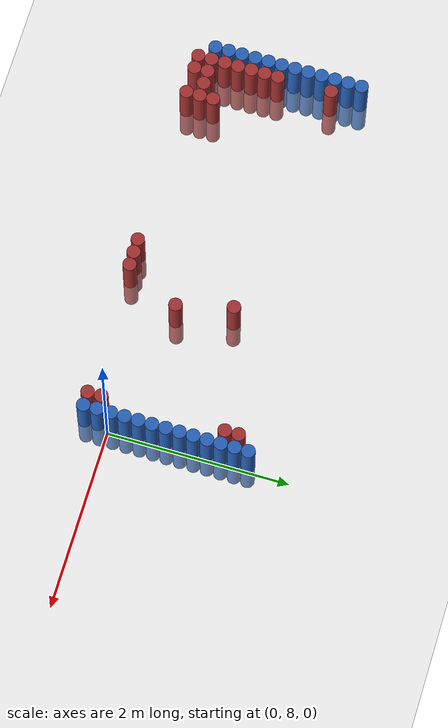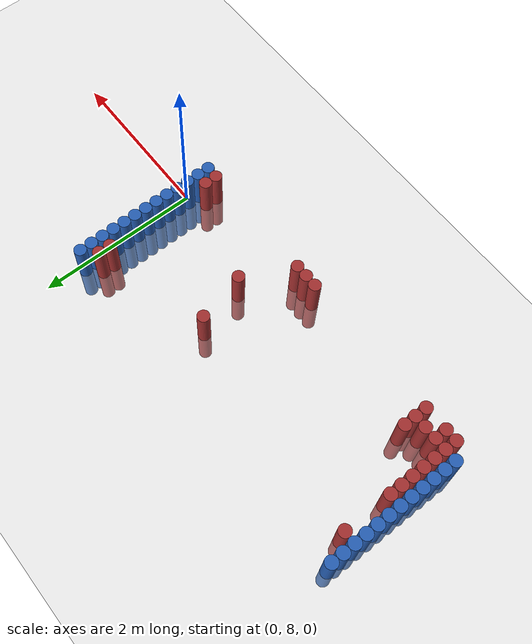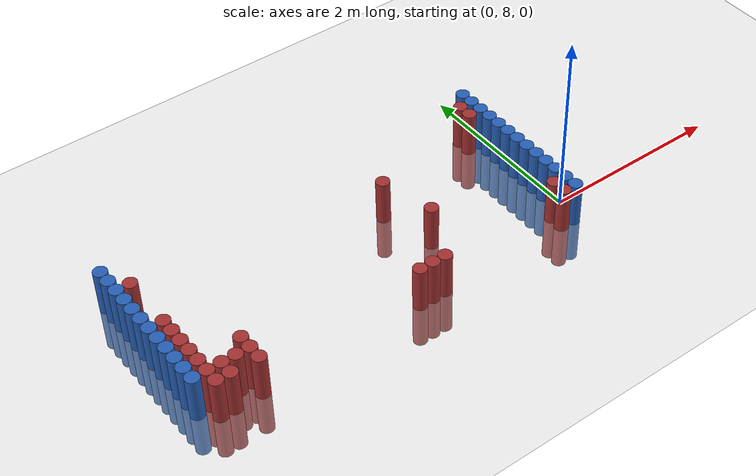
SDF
<sdf version="1.6">
 <world name="default">
  <model name="ground_plane">
   <static>1</static>
   <link name="link">
    <collision name="collision">
     <geometry><plane><normal>0 0 1</normal><size>100 100</size></plane></geometry>
     <surface><friction><ode><mu>100</mu><mu2>50</mu2></ode></friction></surface>
    </collision>
    <visual name="visual">
     <cast_shadows>0</cast_shadows>
     <geometry><plane><normal>0 0 1</normal><size>100 100</size></plane></geometry>
     <material>
      <script><uri>file://media/materials/scripts/gazebo.material</uri><name>Gazebo/Grey</name></script>
     </material>
    </visual>
   </link>
  </model>
  <model name="unit_cylinder_114">
   <static>1</static>
   <pose>-4.425000 7.875000 0.000000 0.000000 0.000000 0.000000</pose>
   <link name="link">
    <inertial>
     <mass>1</mass>
     <inertia><ixx>0.145833</ixx><ixy>0</ixy><ixz>0</ixz><iyy>0.145833</iyy><iyz>0</iyz><izz>0.125</izz></inertia>
    </inertial>
    <collision name="collision">
     <geometry><cylinder><radius>0.075000</radius><length>1</length></cylinder></geometry>
    </collision>
    <visual name="visual">
     <geometry><cylinder><radius>0.075000</radius><length>1</length></cylinder></geometry>
     <material>
      <ambient>0.152000 0.379000 0.720000 1</ambient>
      <diffuse>0.152000 0.379000 0.720000 1</diffuse>
     </material>
     <material>
      <script><name>Gazebo/Grey</name><uri>file://media/materials/scripts/gazebo.material</uri></script>
     </material>
    </visual>
   </link>
  </model>
  <model name="unit_cylinder_115">
   <static>1</static>
   <pose>-4.425000 8.025000 0.000000 0.000000 0.000000 0.000000</pose>
   <link name="link">
    <inertial>
     <mass>1</mass>
     <inertia><ixx>0.145833</ixx><ixy>0</ixy><ixz>0</ixz><iyy>0.145833</iyy><iyz>0</iyz><izz>0.125</izz></inertia>
    </inertial>
    <collision name="collision">
     <geometry><cylinder><radius>0.075000</radius><length>1</length></cylinder></geometry>
    </collision>
    <visual name="visual">
     <geometry><cylinder><radius>0.075000</radius><length>1</length></cylinder></geometry>
     <material>
      <ambient>0.152000 0.379000 0.720000 1</ambient>
      <diffuse>0.152000 0.379000 0.720000 1</diffuse>
     </material>
     <material>
      <script><name>Gazebo/Grey</name><uri>file://media/materials/scripts/gazebo.material</uri></script>
     </material>
    </visual>
   </link>
  </model>
  <model name="unit_cylinder_116">
   <static>1</static>
   <pose>-4.425000 8.175000 0.000000 0.000000 0.000000 0.000000</pose>
   <link name="link">
    <inertial>
     <mass>1</mass>
     <inertia><ixx>0.145833</ixx><ixy>0</ixy><ixz>0</ixz><iyy>0.145833</iyy><iyz>0</iyz><izz>0.125</izz></inertia>
    </inertial>
    <collision name="collision">
     <geometry><cylinder><radius>0.075000</radius><length>1</length></cylinder></geometry>
    </collision>
    <visual name="visual">
     <geometry><cylinder><radius>0.075000</radius><length>1</length></cylinder></geometry>
     <material>
      <ambient>0.152000 0.379000 0.720000 1</ambient>
      <diffuse>0.152000 0.379000 0.720000 1</diffuse>
     </material>
     <material>
      <script><name>Gazebo/Grey</name><uri>file://media/materials/scripts/gazebo.material</uri></script>
     </material>
    </visual>
   </link>
  </model>
  <model name="unit_cylinder_117">
   <static>1</static>
   <pose>-4.425000 8.325000 0.000000 0.000000 0.000000 0.000000</pose>
   <link name="link">
    <inertial>
     <mass>1</mass>
     <inertia><ixx>0.145833</ixx><ixy>0</ixy><ixz>0</ixz><iyy>0.145833</iyy><iyz>0</iyz><izz>0.125</izz></inertia>
    </inertial>
    <collision name="collision">
     <geometry><cylinder><radius>0.075000</radius><length>1</length></cylinder></geometry>
    </collision>
    <visual name="visual">
     <geometry><cylinder><radius>0.075000</radius><length>1</length></cylinder></geometry>
     <material>
      <ambient>0.152000 0.379000 0.720000 1</ambient>
      <diffuse>0.152000 0.379000 0.720000 1</diffuse>
     </material>
     <material>
      <script><name>Gazebo/Grey</name><uri>file://media/materials/scripts/gazebo.material</uri></script>
     </material>
    </visual>
   </link>
  </model>
  <model name="unit_cylinder_118">
   <static>1</static>
   <pose>-4.425000 8.475000 0.000000 0.000000 0.000000 0.000000</pose>
   <link name="link">
    <inertial>
     <mass>1</mass>
     <inertia><ixx>0.145833</ixx><ixy>0</ixy><ixz>0</ixz><iyy>0.145833</iyy><iyz>0</iyz><izz>0.125</izz></inertia>
    </inertial>
    <collision name="collision">
     <geometry><cylinder><radius>0.075000</radius><length>1</length></cylinder></geometry>
    </collision>
    <visual name="visual">
     <geometry><cylinder><radius>0.075000</radius><length>1</length></cylinder></geometry>
     <material>
      <ambient>0.152000 0.379000 0.720000 1</ambient>
      <diffuse>0.152000 0.379000 0.720000 1</diffuse>
     </material>
     <material>
      <script><name>Gazebo/Grey</name><uri>file://media/materials/scripts/gazebo.material</uri></script>
     </material>
    </visual>
   </link>
  </model>
  <model name="unit_cylinder_119">
   <static>1</static>
   <pose>-4.425000 8.625000 0.000000 0.000000 0.000000 0.000000</pose>
   <link name="link">
    <inertial>
     <mass>1</mass>
     <inertia><ixx>0.145833</ixx><ixy>0</ixy><ixz>0</ixz><iyy>0.145833</iyy><iyz>0</iyz><izz>0.125</izz></inertia>
    </inertial>
    <collision name="collision">
     <geometry><cylinder><radius>0.075000</radius><length>1</length></cylinder></geometry>
    </collision>
    <visual name="visual">
     <geometry><cylinder><radius>0.075000</radius><length>1</length></cylinder></geometry>
     <material>
      <ambient>0.152000 0.379000 0.720000 1</ambient>
      <diffuse>0.152000 0.379000 0.720000 1</diffuse>
     </material>
     <material>
      <script><name>Gazebo/Grey</name><uri>file://media/materials/scripts/gazebo.material</uri></script>
     </material>
    </visual>
   </link>
  </model>
  <model name="unit_cylinder_120">
   <static>1</static>
   <pose>-4.425000 8.775000 0.000000 0.000000 0.000000 0.000000</pose>
   <link name="link">
    <inertial>
     <mass>1</mass>
     <inertia><ixx>0.145833</ixx><ixy>0</ixy><ixz>0</ixz><iyy>0.145833</iyy><iyz>0</iyz><izz>0.125</izz></inertia>
    </inertial>
    <collision name="collision">
     <geometry><cylinder><radius>0.075000</radius><length>1</length></cylinder></geometry>
    </collision>
    <visual name="visual">
     <geometry><cylinder><radius>0.075000</radius><length>1</length></cylinder></geometry>
     <material>
      <ambient>0.152000 0.379000 0.720000 1</ambient>
      <diffuse>0.152000 0.379000 0.720000 1</diffuse>
     </material>
     <material>
      <script><name>Gazebo/Grey</name><uri>file://media/materials/scripts/gazebo.material</uri></script>
     </material>
    </visual>
   </link>
  </model>
  <model name="unit_cylinder_121">
   <static>1</static>
   <pose>-4.425000 8.925000 0.000000 0.000000 0.000000 0.000000</pose>
   <link name="link">
    <inertial>
     <mass>1</mass>
     <inertia><ixx>0.145833</ixx><ixy>0</ixy><ixz>0</ixz><iyy>0.145833</iyy><iyz>0</iyz><izz>0.125</izz></inertia>
    </inertial>
    <collision name="collision">
     <geometry><cylinder><radius>0.075000</radius><length>1</length></cylinder></geometry>
    </collision>
    <visual name="visual">
     <geometry><cylinder><radius>0.075000</radius><length>1</length></cylinder></geometry>
     <material>
      <ambient>0.152000 0.379000 0.720000 1</ambient>
      <diffuse>0.152000 0.379000 0.720000 1</diffuse>
     </material>
     <material>
      <script><name>Gazebo/Grey</name><uri>file://media/materials/scripts/gazebo.material</uri></script>
     </material>
    </visual>
   </link>
  </model>
  <model name="unit_cylinder_122">
   <static>1</static>
   <pose>-4.425000 9.075000 0.000000 0.000000 0.000000 0.000000</pose>
   <link name="link">
    <inertial>
     <mass>1</mass>
     <inertia><ixx>0.145833</ixx><ixy>0</ixy><ixz>0</ixz><iyy>0.145833</iyy><iyz>0</iyz><izz>0.125</izz></inertia>
    </inertial>
    <collision name="collision">
     <geometry><cylinder><radius>0.075000</radius><length>1</length></cylinder></geometry>
    </collision>
    <visual name="visual">
     <geometry><cylinder><radius>0.075000</radius><length>1</length></cylinder></geometry>
     <material>
      <ambient>0.152000 0.379000 0.720000 1</ambient>
      <diffuse>0.152000 0.379000 0.720000 1</diffuse>
     </material>
     <material>
      <script><name>Gazebo/Grey</name><uri>file://media/materials/scripts/gazebo.material</uri></script>
     </material>
    </visual>
   </link>
  </model>
  <model name="unit_cylinder_123">
   <static>1</static>
   <pose>-4.425000 9.225000 0.000000 0.000000 0.000000 0.000000</pose>
   <link name="link">
    <inertial>
     <mass>1</mass>
     <inertia><ixx>0.145833</ixx><ixy>0</ixy><ixz>0</ixz><iyy>0.145833</iyy><iyz>0</iyz><izz>0.125</izz></inertia>
    </inertial>
    <collision name="collision">
     <geometry><cylinder><radius>0.075000</radius><length>1</length></cylinder></geometry>
    </collision>
    <visual name="visual">
     <geometry><cylinder><radius>0.075000</radius><length>1</length></cylinder></geometry>
     <material>
      <ambient>0.152000 0.379000 0.720000 1</ambient>
      <diffuse>0.152000 0.379000 0.720000 1</diffuse>
     </material>
     <material>
      <script><name>Gazebo/Grey</name><uri>file://media/materials/scripts/gazebo.material</uri></script>
     </material>
    </visual>
   </link>
  </model>
  <model name="unit_cylinder_124">
   <static>1</static>
   <pose>-4.425000 9.375000 0.000000 0.000000 0.000000 0.000000</pose>
   <link name="link">
    <inertial>
     <mass>1</mass>
     <inertia><ixx>0.145833</ixx><ixy>0</ixy><ixz>0</ixz><iyy>0.145833</iyy><iyz>0</iyz><izz>0.125</izz></inertia>
    </inertial>
    <collision name="collision">
     <geometry><cylinder><radius>0.075000</radius><length>1</length></cylinder></geometry>
    </collision>
    <visual name="visual">
     <geometry><cylinder><radius>0.075000</radius><length>1</length></cylinder></geometry>
     <material>
      <ambient>0.152000 0.379000 0.720000 1</ambient>
      <diffuse>0.152000 0.379000 0.720000 1</diffuse>
     </material>
     <material>
      <script><name>Gazebo/Grey</name><uri>file://media/materials/scripts/gazebo.material</uri></script>
     </material>
    </visual>
   </link>
  </model>
  <model name="unit_cylinder_125">
   <static>1</static>
   <pose>-4.425000 9.525000 0.000000 0.000000 0.000000 0.000000</pose>
   <link name="link">
    <inertial>
     <mass>1</mass>
     <inertia><ixx>0.145833</ixx><ixy>0</ixy><ixz>0</ixz><iyy>0.145833</iyy><iyz>0</iyz><izz>0.125</izz></inertia>
    </inertial>
    <collision name="collision">
     <geometry><cylinder><radius>0.075000</radius><length>1</length></cylinder></geometry>
    </collision>
    <visual name="visual">
     <geometry><cylinder><radius>0.075000</radius><length>1</length></cylinder></geometry>
     <material>
      <ambient>0.152000 0.379000 0.720000 1</ambient>
      <diffuse>0.152000 0.379000 0.720000 1</diffuse>
     </material>
     <material>
      <script><name>Gazebo/Grey</name><uri>file://media/materials/scripts/gazebo.material</uri></script>
     </material>
    </visual>
   </link>
  </model>
  <model name="unit_cylinder_131">
   <static>1</static>
   <pose>-4.275000 7.725000 0.000000 0.000000 0.000000 0.000000</pose>
   <link name="link">
    <inertial>
     <mass>1</mass>
     <inertia><ixx>0.145833</ixx><ixy>0</ixy><ixz>0</ixz><iyy>0.145833</iyy><iyz>0</iyz><izz>0.125</izz></inertia>
    </inertial>
    <collision name="collision">
     <geometry><cylinder><radius>0.075000</radius><length>1</length></cylinder></geometry>
    </collision>
    <visual name="visual">
     <geometry><cylinder><radius>0.075000</radius><length>1</length></cylinder></geometry>
     <material>
      <ambient>0.648000 0.192000 0.192000 1</ambient>
      <diffuse>0.648000 0.192000 0.192000 1</diffuse>
     </material>
     <material>
      <script><name>Gazebo/Grey</name><uri>file://media/materials/scripts/gazebo.material</uri></script>
     </material>
    </visual>
   </link>
  </model>
  <model name="unit_cylinder_132">
   <static>1</static>
   <pose>-4.275000 7.875000 0.000000 0.000000 0.000000 0.000000</pose>
   <link name="link">
    <inertial>
     <mass>1</mass>
     <inertia><ixx>0.145833</ixx><ixy>0</ixy><ixz>0</ixz><iyy>0.145833</iyy><iyz>0</iyz><izz>0.125</izz></inertia>
    </inertial>
    <collision name="collision">
     <geometry><cylinder><radius>0.075000</radius><length>1</length></cylinder></geometry>
    </collision>
    <visual name="visual">
     <geometry><cylinder><radius>0.075000</radius><length>1</length></cylinder></geometry>
     <material>
      <ambient>0.648000 0.192000 0.192000 1</ambient>
      <diffuse>0.648000 0.192000 0.192000 1</diffuse>
     </material>
     <material>
      <script><name>Gazebo/Grey</name><uri>file://media/materials/scripts/gazebo.material</uri></script>
     </material>
    </visual>
   </link>
  </model>
  <model name="unit_cylinder_133">
   <static>1</static>
   <pose>-4.275000 8.025000 0.000000 0.000000 0.000000 0.000000</pose>
   <link name="link">
    <inertial>
     <mass>1</mass>
     <inertia><ixx>0.145833</ixx><ixy>0</ixy><ixz>0</ixz><iyy>0.145833</iyy><iyz>0</iyz><izz>0.125</izz></inertia>
    </inertial>
    <collision name="collision">
     <geometry><cylinder><radius>0.075000</radius><length>1</length></cylinder></geometry>
    </collision>
    <visual name="visual">
     <geometry><cylinder><radius>0.075000</radius><length>1</length></cylinder></geometry>
     <material>
      <ambient>0.648000 0.192000 0.192000 1</ambient>
      <diffuse>0.648000 0.192000 0.192000 1</diffuse>
     </material>
     <material>
      <script><name>Gazebo/Grey</name><uri>file://media/materials/scripts/gazebo.material</uri></script>
     </material>
    </visual>
   </link>
  </model>
  <model name="unit_cylinder_134">
   <static>1</static>
   <pose>-4.275000 8.175000 0.000000 0.000000 0.000000 0.000000</pose>
   <link name="link">
    <inertial>
     <mass>1</mass>
     <inertia><ixx>0.145833</ixx><ixy>0</ixy><ixz>0</ixz><iyy>0.145833</iyy><iyz>0</iyz><izz>0.125</izz></inertia>
    </inertial>
    <collision name="collision">
     <geometry><cylinder><radius>0.075000</radius><length>1</length></cylinder></geometry>
    </collision>
    <visual name="visual">
     <geometry><cylinder><radius>0.075000</radius><length>1</length></cylinder></geometry>
     <material>
      <ambient>0.648000 0.192000 0.192000 1</ambient>
      <diffuse>0.648000 0.192000 0.192000 1</diffuse>
     </material>
     <material>
      <script><name>Gazebo/Grey</name><uri>file://media/materials/scripts/gazebo.material</uri></script>
     </material>
    </visual>
   </link>
  </model>
  <model name="unit_cylinder_135">
   <static>1</static>
   <pose>-4.275000 8.325000 0.000000 0.000000 0.000000 0.000000</pose>
   <link name="link">
    <inertial>
     <mass>1</mass>
     <inertia><ixx>0.145833</ixx><ixy>0</ixy><ixz>0</ixz><iyy>0.145833</iyy><iyz>0</iyz><izz>0.125</izz></inertia>
    </inertial>
    <collision name="collision">
     <geometry><cylinder><radius>0.075000</radius><length>1</length></cylinder></geometry>
    </collision>
    <visual name="visual">
     <geometry><cylinder><radius>0.075000</radius><length>1</length></cylinder></geometry>
     <material>
      <ambient>0.648000 0.192000 0.192000 1</ambient>
      <diffuse>0.648000 0.192000 0.192000 1</diffuse>
     </material>
     <material>
      <script><name>Gazebo/Grey</name><uri>file://media/materials/scripts/gazebo.material</uri></script>
     </material>
    </visual>
   </link>
  </model>
  <model name="unit_cylinder_136">
   <static>1</static>
   <pose>-4.275000 8.475000 0.000000 0.000000 0.000000 0.000000</pose>
   <link name="link">
    <inertial>
     <mass>1</mass>
     <inertia><ixx>0.145833</ixx><ixy>0</ixy><ixz>0</ixz><iyy>0.145833</iyy><iyz>0</iyz><izz>0.125</izz></inertia>
    </inertial>
    <collision name="collision">
     <geometry><cylinder><radius>0.075000</radius><length>1</length></cylinder></geometry>
    </collision>
    <visual name="visual">
     <geometry><cylinder><radius>0.075000</radius><length>1</length></cylinder></geometry>
     <material>
      <ambient>0.648000 0.192000 0.192000 1</ambient>
      <diffuse>0.648000 0.192000 0.192000 1</diffuse>
     </material>
     <material>
      <script><name>Gazebo/Grey</name><uri>file://media/materials/scripts/gazebo.material</uri></script>
     </material>
    </visual>
   </link>
  </model>
  <model name="unit_cylinder_137">
   <static>1</static>
   <pose>-4.275000 8.625000 0.000000 0.000000 0.000000 0.000000</pose>
   <link name="link">
    <inertial>
     <mass>1</mass>
     <inertia><ixx>0.145833</ixx><ixy>0</ixy><ixz>0</ixz><iyy>0.145833</iyy><iyz>0</iyz><izz>0.125</izz></inertia>
    </inertial>
    <collision name="collision">
     <geometry><cylinder><radius>0.075000</radius><length>1</length></cylinder></geometry>
    </collision>
    <visual name="visual">
     <geometry><cylinder><radius>0.075000</radius><length>1</length></cylinder></geometry>
     <material>
      <ambient>0.648000 0.192000 0.192000 1</ambient>
      <diffuse>0.648000 0.192000 0.192000 1</diffuse>
     </material>
     <material>
      <script><name>Gazebo/Grey</name><uri>file://media/materials/scripts/gazebo.material</uri></script>
     </material>
    </visual>
   </link>
  </model>
  <model name="unit_cylinder_138">
   <static>1</static>
   <pose>-4.275000 9.225000 0.000000 0.000000 0.000000 0.000000</pose>
   <link name="link">
    <inertial>
     <mass>1</mass>
     <inertia><ixx>0.145833</ixx><ixy>0</ixy><ixz>0</ixz><iyy>0.145833</iyy><iyz>0</iyz><izz>0.125</izz></inertia>
    </inertial>
    <collision name="collision">
     <geometry><cylinder><radius>0.075000</radius><length>1</length></cylinder></geometry>
    </collision>
    <visual name="visual">
     <geometry><cylinder><radius>0.075000</radius><length>1</length></cylinder></geometry>
     <material>
      <ambient>0.648000 0.192000 0.192000 1</ambient>
      <diffuse>0.648000 0.192000 0.192000 1</diffuse>
     </material>
     <material>
      <script><name>Gazebo/Grey</name><uri>file://media/materials/scripts/gazebo.material</uri></script>
     </material>
    </visual>
   </link>
  </model>
  <model name="unit_cylinder_139">
   <static>1</static>
   <pose>-4.125000 7.725000 0.000000 0.000000 0.000000 0.000000</pose>
   <link name="link">
    <inertial>
     <mass>1</mass>
     <inertia><ixx>0.145833</ixx><ixy>0</ixy><ixz>0</ixz><iyy>0.145833</iyy><iyz>0</iyz><izz>0.125</izz></inertia>
    </inertial>
    <collision name="collision">
     <geometry><cylinder><radius>0.075000</radius><length>1</length></cylinder></geometry>
    </collision>
    <visual name="visual">
     <geometry><cylinder><radius>0.075000</radius><length>1</length></cylinder></geometry>
     <material>
      <ambient>0.648000 0.192000 0.192000 1</ambient>
      <diffuse>0.648000 0.192000 0.192000 1</diffuse>
     </material>
     <material>
      <script><name>Gazebo/Grey</name><uri>file://media/materials/scripts/gazebo.material</uri></script>
     </material>
    </visual>
   </link>
  </model>
  <model name="unit_cylinder_140">
   <static>1</static>
   <pose>-4.125000 7.875000 0.000000 0.000000 0.000000 0.000000</pose>
   <link name="link">
    <inertial>
     <mass>1</mass>
     <inertia><ixx>0.145833</ixx><ixy>0</ixy><ixz>0</ixz><iyy>0.145833</iyy><iyz>0</iyz><izz>0.125</izz></inertia>
    </inertial>
    <collision name="collision">
     <geometry><cylinder><radius>0.075000</radius><length>1</length></cylinder></geometry>
    </collision>
    <visual name="visual">
     <geometry><cylinder><radius>0.075000</radius><length>1</length></cylinder></geometry>
     <material>
      <ambient>0.648000 0.192000 0.192000 1</ambient>
      <diffuse>0.648000 0.192000 0.192000 1</diffuse>
     </material>
     <material>
      <script><name>Gazebo/Grey</name><uri>file://media/materials/scripts/gazebo.material</uri></script>
     </material>
    </visual>
   </link>
  </model>
  <model name="unit_cylinder_141">
   <static>1</static>
   <pose>-3.975000 7.875000 0.000000 0.000000 0.000000 0.000000</pose>
   <link name="link">
    <inertial>
     <mass>1</mass>
     <inertia><ixx>0.145833</ixx><ixy>0</ixy><ixz>0</ixz><iyy>0.145833</iyy><iyz>0</iyz><izz>0.125</izz></inertia>
    </inertial>
    <collision name="collision">
     <geometry><cylinder><radius>0.075000</radius><length>1</length></cylinder></geometry>
    </collision>
    <visual name="visual">
     <geometry><cylinder><radius>0.075000</radius><length>1</length></cylinder></geometry>
     <material>
      <ambient>0.648000 0.192000 0.192000 1</ambient>
      <diffuse>0.648000 0.192000 0.192000 1</diffuse>
     </material>
     <material>
      <script><name>Gazebo/Grey</name><uri>file://media/materials/scripts/gazebo.material</uri></script>
     </material>
    </visual>
   </link>
  </model>
  <model name="unit_cylinder_142">
   <static>1</static>
   <pose>-3.825000 7.725000 0.000000 0.000000 0.000000 0.000000</pose>
   <link name="link">
    <inertial>
     <mass>1</mass>
     <inertia><ixx>0.145833</ixx><ixy>0</ixy><ixz>0</ixz><iyy>0.145833</iyy><iyz>0</iyz><izz>0.125</izz></inertia>
    </inertial>
    <collision name="collision">
     <geometry><cylinder><radius>0.075000</radius><length>1</length></cylinder></geometry>
    </collision>
    <visual name="visual">
     <geometry><cylinder><radius>0.075000</radius><length>1</length></cylinder></geometry>
     <material>
      <ambient>0.648000 0.192000 0.192000 1</ambient>
      <diffuse>0.648000 0.192000 0.192000 1</diffuse>
     </material>
     <material>
      <script><name>Gazebo/Grey</name><uri>file://media/materials/scripts/gazebo.material</uri></script>
     </material>
    </visual>
   </link>
  </model>
  <model name="unit_cylinder_143">
   <static>1</static>
   <pose>-3.825000 7.875000 0.000000 0.000000 0.000000 0.000000</pose>
   <link name="link">
    <inertial>
     <mass>1</mass>
     <inertia><ixx>0.145833</ixx><ixy>0</ixy><ixz>0</ixz><iyy>0.145833</iyy><iyz>0</iyz><izz>0.125</izz></inertia>
    </inertial>
    <collision name="collision">
     <geometry><cylinder><radius>0.075000</radius><length>1</length></cylinder></geometry>
    </collision>
    <visual name="visual">
     <geometry><cylinder><radius>0.075000</radius><length>1</length></cylinder></geometry>
     <material>
      <ambient>0.648000 0.192000 0.192000 1</ambient>
      <diffuse>0.648000 0.192000 0.192000 1</diffuse>
     </material>
     <material>
      <script><name>Gazebo/Grey</name><uri>file://media/materials/scripts/gazebo.material</uri></script>
     </material>
    </visual>
   </link>
  </model>
  <model name="unit_cylinder_144">
   <static>1</static>
   <pose>-3.825000 8.025000 0.000000 0.000000 0.000000 0.000000</pose>
   <link name="link">
    <inertial>
     <mass>1</mass>
     <inertia><ixx>0.145833</ixx><ixy>0</ixy><ixz>0</ixz><iyy>0.145833</iyy><iyz>0</iyz><izz>0.125</izz></inertia>
    </inertial>
    <collision name="collision">
     <geometry><cylinder><radius>0.075000</radius><length>1</length></cylinder></geometry>
    </collision>
    <visual name="visual">
     <geometry><cylinder><radius>0.075000</radius><length>1</length></cylinder></geometry>
     <material>
      <ambient>0.648000 0.192000 0.192000 1</ambient>
      <diffuse>0.648000 0.192000 0.192000 1</diffuse>
     </material>
     <material>
      <script><name>Gazebo/Grey</name><uri>file://media/materials/scripts/gazebo.material</uri></script>
     </material>
    </visual>
   </link>
  </model>
  <model name="unit_cylinder_149">
   <static>1</static>
   <pose>-2.025000 7.725000 0.000000 0.000000 0.000000 0.000000</pose>
   <link name="link">
    <inertial>
     <mass>1</mass>
     <inertia><ixx>0.145833</ixx><ixy>0</ixy><ixz>0</ixz><iyy>0.145833</iyy><iyz>0</iyz><izz>0.125</izz></inertia>
    </inertial>
    <collision name="collision">
     <geometry><cylinder><radius>0.075000</radius><length>1</length></cylinder></geometry>
    </collision>
    <visual name="visual">
     <geometry><cylinder><radius>0.075000</radius><length>1</length></cylinder></geometry>
     <material>
      <ambient>0.648000 0.192000 0.192000 1</ambient>
      <diffuse>0.648000 0.192000 0.192000 1</diffuse>
     </material>
     <material>
      <script><name>Gazebo/Grey</name><uri>file://media/materials/scripts/gazebo.material</uri></script>
     </material>
    </visual>
   </link>
  </model>
  <model name="unit_cylinder_151">
   <static>1</static>
   <pose>-1.875000 7.725000 0.000000 0.000000 0.000000 0.000000</pose>
   <link name="link">
    <inertial>
     <mass>1</mass>
     <inertia><ixx>0.145833</ixx><ixy>0</ixy><ixz>0</ixz><iyy>0.145833</iyy><iyz>0</iyz><izz>0.125</izz></inertia>
    </inertial>
    <collision name="collision">
     <geometry><cylinder><radius>0.075000</radius><length>1</length></cylinder></geometry>
    </collision>
    <visual name="visual">
     <geometry><cylinder><radius>0.075000</radius><length>1</length></cylinder></geometry>
     <material>
      <ambient>0.648000 0.192000 0.192000 1</ambient>
      <diffuse>0.648000 0.192000 0.192000 1</diffuse>
     </material>
     <material>
      <script><name>Gazebo/Grey</name><uri>file://media/materials/scripts/gazebo.material</uri></script>
     </material>
    </visual>
   </link>
  </model>
  <model name="unit_cylinder_152">
   <static>1</static>
   <pose>-1.725000 7.725000 0.000000 0.000000 0.000000 0.000000</pose>
   <link name="link">
    <inertial>
     <mass>1</mass>
     <inertia><ixx>0.145833</ixx><ixy>0</ixy><ixz>0</ixz><iyy>0.145833</iyy><iyz>0</iyz><izz>0.125</izz></inertia>
    </inertial>
    <collision name="collision">
     <geometry><cylinder><radius>0.075000</radius><length>1</length></cylinder></geometry>
    </collision>
    <visual name="visual">
     <geometry><cylinder><radius>0.075000</radius><length>1</length></cylinder></geometry>
     <material>
      <ambient>0.648000 0.192000 0.192000 1</ambient>
      <diffuse>0.648000 0.192000 0.192000 1</diffuse>
     </material>
     <material>
      <script><name>Gazebo/Grey</name><uri>file://media/materials/scripts/gazebo.material</uri></script>
     </material>
    </visual>
   </link>
  </model>
  <model name="unit_cylinder_153">
   <static>1</static>
   <pose>-1.575000 8.925000 0.000000 0.000000 0.000000 0.000000</pose>
   <link name="link">
    <inertial>
     <mass>1</mass>
     <inertia><ixx>0.145833</ixx><ixy>0</ixy><ixz>0</ixz><iyy>0.145833</iyy><iyz>0</iyz><izz>0.125</izz></inertia>
    </inertial>
    <collision name="collision">
     <geometry><cylinder><radius>0.075000</radius><length>1</length></cylinder></geometry>
    </collision>
    <visual name="visual">
     <geometry><cylinder><radius>0.075000</radius><length>1</length></cylinder></geometry>
     <material>
      <ambient>0.648000 0.192000 0.192000 1</ambient>
      <diffuse>0.648000 0.192000 0.192000 1</diffuse>
     </material>
     <material>
      <script><name>Gazebo/Grey</name><uri>file://media/materials/scripts/gazebo.material</uri></script>
     </material>
    </visual>
   </link>
  </model>
  <model name="unit_cylinder_154">
   <static>1</static>
   <pose>-1.425000 8.325000 0.000000 0.000000 0.000000 0.000000</pose>
   <link name="link">
    <inertial>
     <mass>1</mass>
     <inertia><ixx>0.145833</ixx><ixy>0</ixy><ixz>0</ixz><iyy>0.145833</iyy><iyz>0</iyz><izz>0.125</izz></inertia>
    </inertial>
    <collision name="collision">
     <geometry><cylinder><radius>0.075000</radius><length>1</length></cylinder></geometry>
    </collision>
    <visual name="visual">
     <geometry><cylinder><radius>0.075000</radius><length>1</length></cylinder></geometry>
     <material>
      <ambient>0.648000 0.192000 0.192000 1</ambient>
      <diffuse>0.648000 0.192000 0.192000 1</diffuse>
     </material>
     <material>
      <script><name>Gazebo/Grey</name><uri>file://media/materials/scripts/gazebo.material</uri></script>
     </material>
    </visual>
   </link>
  </model>
  <model name="unit_cylinder_160">
   <static>1</static>
   <pose>-0.225000 7.725000 0.000000 0.000000 0.000000 0.000000</pose>
   <link name="link">
    <inertial>
     <mass>1</mass>
     <inertia><ixx>0.145833</ixx><ixy>0</ixy><ixz>0</ixz><iyy>0.145833</iyy><iyz>0</iyz><izz>0.125</izz></inertia>
    </inertial>
    <collision name="collision">
     <geometry><cylinder><radius>0.075000</radius><length>1</length></cylinder></geometry>
    </collision>
    <visual name="visual">
     <geometry><cylinder><radius>0.075000</radius><length>1</length></cylinder></geometry>
     <material>
      <ambient>0.648000 0.192000 0.192000 1</ambient>
      <diffuse>0.648000 0.192000 0.192000 1</diffuse>
     </material>
     <material>
      <script><name>Gazebo/Grey</name><uri>file://media/materials/scripts/gazebo.material</uri></script>
     </material>
    </visual>
   </link>
  </model>
  <model name="unit_cylinder_161">
   <static>1</static>
   <pose>-0.225000 7.875000 0.000000 0.000000 0.000000 0.000000</pose>
   <link name="link">
    <inertial>
     <mass>1</mass>
     <inertia><ixx>0.145833</ixx><ixy>0</ixy><ixz>0</ixz><iyy>0.145833</iyy><iyz>0</iyz><izz>0.125</izz></inertia>
    </inertial>
    <collision name="collision">
     <geometry><cylinder><radius>0.075000</radius><length>1</length></cylinder></geometry>
    </collision>
    <visual name="visual">
     <geometry><cylinder><radius>0.075000</radius><length>1</length></cylinder></geometry>
     <material>
      <ambient>0.648000 0.192000 0.192000 1</ambient>
      <diffuse>0.648000 0.192000 0.192000 1</diffuse>
     </material>
     <material>
      <script><name>Gazebo/Grey</name><uri>file://media/materials/scripts/gazebo.material</uri></script>
     </material>
    </visual>
   </link>
  </model>
  <model name="unit_cylinder_162">
   <static>1</static>
   <pose>-0.225000 9.225000 0.000000 0.000000 0.000000 0.000000</pose>
   <link name="link">
    <inertial>
     <mass>1</mass>
     <inertia><ixx>0.145833</ixx><ixy>0</ixy><ixz>0</ixz><iyy>0.145833</iyy><iyz>0</iyz><izz>0.125</izz></inertia>
    </inertial>
    <collision name="collision">
     <geometry><cylinder><radius>0.075000</radius><length>1</length></cylinder></geometry>
    </collision>
    <visual name="visual">
     <geometry><cylinder><radius>0.075000</radius><length>1</length></cylinder></geometry>
     <material>
      <ambient>0.648000 0.192000 0.192000 1</ambient>
      <diffuse>0.648000 0.192000 0.192000 1</diffuse>
     </material>
     <material>
      <script><name>Gazebo/Grey</name><uri>file://media/materials/scripts/gazebo.material</uri></script>
     </material>
    </visual>
   </link>
  </model>
  <model name="unit_cylinder_163">
   <static>1</static>
   <pose>-0.225000 9.375000 0.000000 0.000000 0.000000 0.000000</pose>
   <link name="link">
    <inertial>
     <mass>1</mass>
     <inertia><ixx>0.145833</ixx><ixy>0</ixy><ixz>0</ixz><iyy>0.145833</iyy><iyz>0</iyz><izz>0.125</izz></inertia>
    </inertial>
    <collision name="collision">
     <geometry><cylinder><radius>0.075000</radius><length>1</length></cylinder></geometry>
    </collision>
    <visual name="visual">
     <geometry><cylinder><radius>0.075000</radius><length>1</length></cylinder></geometry>
     <material>
      <ambient>0.648000 0.192000 0.192000 1</ambient>
      <diffuse>0.648000 0.192000 0.192000 1</diffuse>
     </material>
     <material>
      <script><name>Gazebo/Grey</name><uri>file://media/materials/scripts/gazebo.material</uri></script>
     </material>
    </visual>
   </link>
  </model>
  <model name="unit_cylinder_181">
   <static>1</static>
   <pose>-0.075000 7.725000 0.000000 0.000000 0.000000 0.000000</pose>
   <link name="link">
    <inertial>
     <mass>1</mass>
     <inertia><ixx>0.145833</ixx><ixy>0</ixy><ixz>0</ixz><iyy>0.145833</iyy><iyz>0</iyz><izz>0.125</izz></inertia>
    </inertial>
    <collision name="collision">
     <geometry><cylinder><radius>0.075000</radius><length>1</length></cylinder></geometry>
    </collision>
    <visual name="visual">
     <geometry><cylinder><radius>0.075000</radius><length>1</length></cylinder></geometry>
     <material>
      <ambient>0.152000 0.379000 0.720000 1</ambient>
      <diffuse>0.152000 0.379000 0.720000 1</diffuse>
     </material>
     <material>
      <script><name>Gazebo/Grey</name><uri>file://media/materials/scripts/gazebo.material</uri></script>
     </material>
    </visual>
   </link>
  </model>
  <model name="unit_cylinder_182">
   <static>1</static>
   <pose>-0.075000 7.875000 0.000000 0.000000 0.000000 0.000000</pose>
   <link name="link">
    <inertial>
     <mass>1</mass>
     <inertia><ixx>0.145833</ixx><ixy>0</ixy><ixz>0</ixz><iyy>0.145833</iyy><iyz>0</iyz><izz>0.125</izz></inertia>
    </inertial>
    <collision name="collision">
     <geometry><cylinder><radius>0.075000</radius><length>1</length></cylinder></geometry>
    </collision>
    <visual name="visual">
     <geometry><cylinder><radius>0.075000</radius><length>1</length></cylinder></geometry>
     <material>
      <ambient>0.152000 0.379000 0.720000 1</ambient>
      <diffuse>0.152000 0.379000 0.720000 1</diffuse>
     </material>
     <material>
      <script><name>Gazebo/Grey</name><uri>file://media/materials/scripts/gazebo.material</uri></script>
     </material>
    </visual>
   </link>
  </model>
  <model name="unit_cylinder_183">
   <static>1</static>
   <pose>-0.075000 8.025000 0.000000 0.000000 0.000000 0.000000</pose>
   <link name="link">
    <inertial>
     <mass>1</mass>
     <inertia><ixx>0.145833</ixx><ixy>0</ixy><ixz>0</ixz><iyy>0.145833</iyy><iyz>0</iyz><izz>0.125</izz></inertia>
    </inertial>
    <collision name="collision">
     <geometry><cylinder><radius>0.075000</radius><length>1</length></cylinder></geometry>
    </collision>
    <visual name="visual">
     <geometry><cylinder><radius>0.075000</radius><length>1</length></cylinder></geometry>
     <material>
      <ambient>0.152000 0.379000 0.720000 1</ambient>
      <diffuse>0.152000 0.379000 0.720000 1</diffuse>
     </material>
     <material>
      <script><name>Gazebo/Grey</name><uri>file://media/materials/scripts/gazebo.material</uri></script>
     </material>
    </visual>
   </link>
  </model>
  <model name="unit_cylinder_184">
   <static>1</static>
   <pose>-0.075000 8.175000 0.000000 0.000000 0.000000 0.000000</pose>
   <link name="link">
    <inertial>
     <mass>1</mass>
     <inertia><ixx>0.145833</ixx><ixy>0</ixy><ixz>0</ixz><iyy>0.145833</iyy><iyz>0</iyz><izz>0.125</izz></inertia>
    </inertial>
    <collision name="collision">
     <geometry><cylinder><radius>0.075000</radius><length>1</length></cylinder></geometry>
    </collision>
    <visual name="visual">
     <geometry><cylinder><radius>0.075000</radius><length>1</length></cylinder></geometry>
     <material>
      <ambient>0.152000 0.379000 0.720000 1</ambient>
      <diffuse>0.152000 0.379000 0.720000 1</diffuse>
     </material>
     <material>
      <script><name>Gazebo/Grey</name><uri>file://media/materials/scripts/gazebo.material</uri></script>
     </material>
    </visual>
   </link>
  </model>
  <model name="unit_cylinder_185">
   <static>1</static>
   <pose>-0.075000 8.325000 0.000000 0.000000 0.000000 0.000000</pose>
   <link name="link">
    <inertial>
     <mass>1</mass>
     <inertia><ixx>0.145833</ixx><ixy>0</ixy><ixz>0</ixz><iyy>0.145833</iyy><iyz>0</iyz><izz>0.125</izz></inertia>
    </inertial>
    <collision name="collision">
     <geometry><cylinder><radius>0.075000</radius><length>1</length></cylinder></geometry>
    </collision>
    <visual name="visual">
     <geometry><cylinder><radius>0.075000</radius><length>1</length></cylinder></geometry>
     <material>
      <ambient>0.152000 0.379000 0.720000 1</ambient>
      <diffuse>0.152000 0.379000 0.720000 1</diffuse>
     </material>
     <material>
      <script><name>Gazebo/Grey</name><uri>file://media/materials/scripts/gazebo.material</uri></script>
     </material>
    </visual>
   </link>
  </model>
  <model name="unit_cylinder_186">
   <static>1</static>
   <pose>-0.075000 8.475000 0.000000 0.000000 0.000000 0.000000</pose>
   <link name="link">
    <inertial>
     <mass>1</mass>
     <inertia><ixx>0.145833</ixx><ixy>0</ixy><ixz>0</ixz><iyy>0.145833</iyy><iyz>0</iyz><izz>0.125</izz></inertia>
    </inertial>
    <collision name="collision">
     <geometry><cylinder><radius>0.075000</radius><length>1</length></cylinder></geometry>
    </collision>
    <visual name="visual">
     <geometry><cylinder><radius>0.075000</radius><length>1</length></cylinder></geometry>
     <material>
      <ambient>0.152000 0.379000 0.720000 1</ambient>
      <diffuse>0.152000 0.379000 0.720000 1</diffuse>
     </material>
     <material>
      <script><name>Gazebo/Grey</name><uri>file://media/materials/scripts/gazebo.material</uri></script>
     </material>
    </visual>
   </link>
  </model>
  <model name="unit_cylinder_187">
   <static>1</static>
   <pose>-0.075000 8.625000 0.000000 0.000000 0.000000 0.000000</pose>
   <link name="link">
    <inertial>
     <mass>1</mass>
     <inertia><ixx>0.145833</ixx><ixy>0</ixy><ixz>0</ixz><iyy>0.145833</iyy><iyz>0</iyz><izz>0.125</izz></inertia>
    </inertial>
    <collision name="collision">
     <geometry><cylinder><radius>0.075000</radius><length>1</length></cylinder></geometry>
    </collision>
    <visual name="visual">
     <geometry><cylinder><radius>0.075000</radius><length>1</length></cylinder></geometry>
     <material>
      <ambient>0.152000 0.379000 0.720000 1</ambient>
      <diffuse>0.152000 0.379000 0.720000 1</diffuse>
     </material>
     <material>
      <script><name>Gazebo/Grey</name><uri>file://media/materials/scripts/gazebo.material</uri></script>
     </material>
    </visual>
   </link>
  </model>
  <model name="unit_cylinder_188">
   <static>1</static>
   <pose>-0.075000 8.775000 0.000000 0.000000 0.000000 0.000000</pose>
   <link name="link">
    <inertial>
     <mass>1</mass>
     <inertia><ixx>0.145833</ixx><ixy>0</ixy><ixz>0</ixz><iyy>0.145833</iyy><iyz>0</iyz><izz>0.125</izz></inertia>
    </inertial>
    <collision name="collision">
     <geometry><cylinder><radius>0.075000</radius><length>1</length></cylinder></geometry>
    </collision>
    <visual name="visual">
     <geometry><cylinder><radius>0.075000</radius><length>1</length></cylinder></geometry>
     <material>
      <ambient>0.152000 0.379000 0.720000 1</ambient>
      <diffuse>0.152000 0.379000 0.720000 1</diffuse>
     </material>
     <material>
      <script><name>Gazebo/Grey</name><uri>file://media/materials/scripts/gazebo.material</uri></script>
     </material>
    </visual>
   </link>
  </model>
  <model name="unit_cylinder_189">
   <static>1</static>
   <pose>-0.075000 8.925000 0.000000 0.000000 0.000000 0.000000</pose>
   <link name="link">
    <inertial>
     <mass>1</mass>
     <inertia><ixx>0.145833</ixx><ixy>0</ixy><ixz>0</ixz><iyy>0.145833</iyy><iyz>0</iyz><izz>0.125</izz></inertia>
    </inertial>
    <collision name="collision">
     <geometry><cylinder><radius>0.075000</radius><length>1</length></cylinder></geometry>
    </collision>
    <visual name="visual">
     <geometry><cylinder><radius>0.075000</radius><length>1</length></cylinder></geometry>
     <material>
      <ambient>0.152000 0.379000 0.720000 1</ambient>
      <diffuse>0.152000 0.379000 0.720000 1</diffuse>
     </material>
     <material>
      <script><name>Gazebo/Grey</name><uri>file://media/materials/scripts/gazebo.material</uri></script>
     </material>
    </visual>
   </link>
  </model>
  <model name="unit_cylinder_190">
   <static>1</static>
   <pose>-0.075000 9.075000 0.000000 0.000000 0.000000 0.000000</pose>
   <link name="link">
    <inertial>
     <mass>1</mass>
     <inertia><ixx>0.145833</ixx><ixy>0</ixy><ixz>0</ixz><iyy>0.145833</iyy><iyz>0</iyz><izz>0.125</izz></inertia>
    </inertial>
    <collision name="collision">
     <geometry><cylinder><radius>0.075000</radius><length>1</length></cylinder></geometry>
    </collision>
    <visual name="visual">
     <geometry><cylinder><radius>0.075000</radius><length>1</length></cylinder></geometry>
     <material>
      <ambient>0.152000 0.379000 0.720000 1</ambient>
      <diffuse>0.152000 0.379000 0.720000 1</diffuse>
     </material>
     <material>
      <script><name>Gazebo/Grey</name><uri>file://media/materials/scripts/gazebo.material</uri></script>
     </material>
    </visual>
   </link>
  </model>
  <model name="unit_cylinder_191">
   <static>1</static>
   <pose>-0.075000 9.225000 0.000000 0.000000 0.000000 0.000000</pose>
   <link name="link">
    <inertial>
     <mass>1</mass>
     <inertia><ixx>0.145833</ixx><ixy>0</ixy><ixz>0</ixz><iyy>0.145833</iyy><iyz>0</iyz><izz>0.125</izz></inertia>
    </inertial>
    <collision name="collision">
     <geometry><cylinder><radius>0.075000</radius><length>1</length></cylinder></geometry>
    </collision>
    <visual name="visual">
     <geometry><cylinder><radius>0.075000</radius><length>1</length></cylinder></geometry>
     <material>
      <ambient>0.152000 0.379000 0.720000 1</ambient>
      <diffuse>0.152000 0.379000 0.720000 1</diffuse>
     </material>
     <material>
      <script><name>Gazebo/Grey</name><uri>file://media/materials/scripts/gazebo.material</uri></script>
     </material>
    </visual>
   </link>
  </model>
  <model name="unit_cylinder_192">
   <static>1</static>
   <pose>-0.075000 9.375000 0.000000 0.000000 0.000000 0.000000</pose>
   <link name="link">
    <inertial>
     <mass>1</mass>
     <inertia><ixx>0.145833</ixx><ixy>0</ixy><ixz>0</ixz><iyy>0.145833</iyy><iyz>0</iyz><izz>0.125</izz></inertia>
    </inertial>
    <collision name="collision">
     <geometry><cylinder><radius>0.075000</radius><length>1</length></cylinder></geometry>
    </collision>
    <visual name="visual">
     <geometry><cylinder><radius>0.075000</radius><length>1</length></cylinder></geometry>
     <material>
      <ambient>0.152000 0.379000 0.720000 1</ambient>
      <diffuse>0.152000 0.379000 0.720000 1</diffuse>
     </material>
     <material>
      <script><name>Gazebo/Grey</name><uri>file://media/materials/scripts/gazebo.material</uri></script>
     </material>
    </visual>
   </link>
  </model>
  <model name="unit_cylinder_193">
   <static>1</static>
   <pose>-0.075000 9.525000 0.000000 0.000000 0.000000 0.000000</pose>
   <link name="link">
    <inertial>
     <mass>1</mass>
     <inertia><ixx>0.145833</ixx><ixy>0</ixy><ixz>0</ixz><iyy>0.145833</iyy><iyz>0</iyz><izz>0.125</izz></inertia>
    </inertial>
    <collision name="collision">
     <geometry><cylinder><radius>0.075000</radius><length>1</length></cylinder></geometry>
    </collision>
    <visual name="visual">
     <geometry><cylinder><radius>0.075000</radius><length>1</length></cylinder></geometry>
     <material>
      <ambient>0.152000 0.379000 0.720000 1</ambient>
      <diffuse>0.152000 0.379000 0.720000 1</diffuse>
     </material>
     <material>
      <script><name>Gazebo/Grey</name><uri>file://media/materials/scripts/gazebo.material</uri></script>
     </material>
    </visual>
   </link>
  </model>
 </world>
</sdf>
